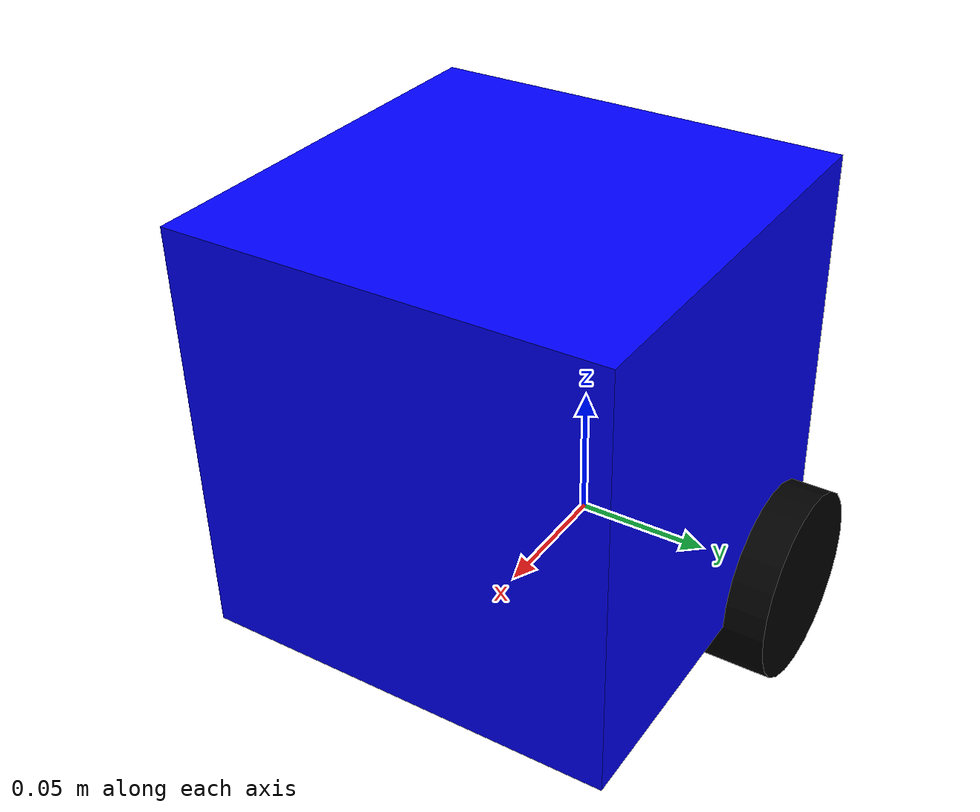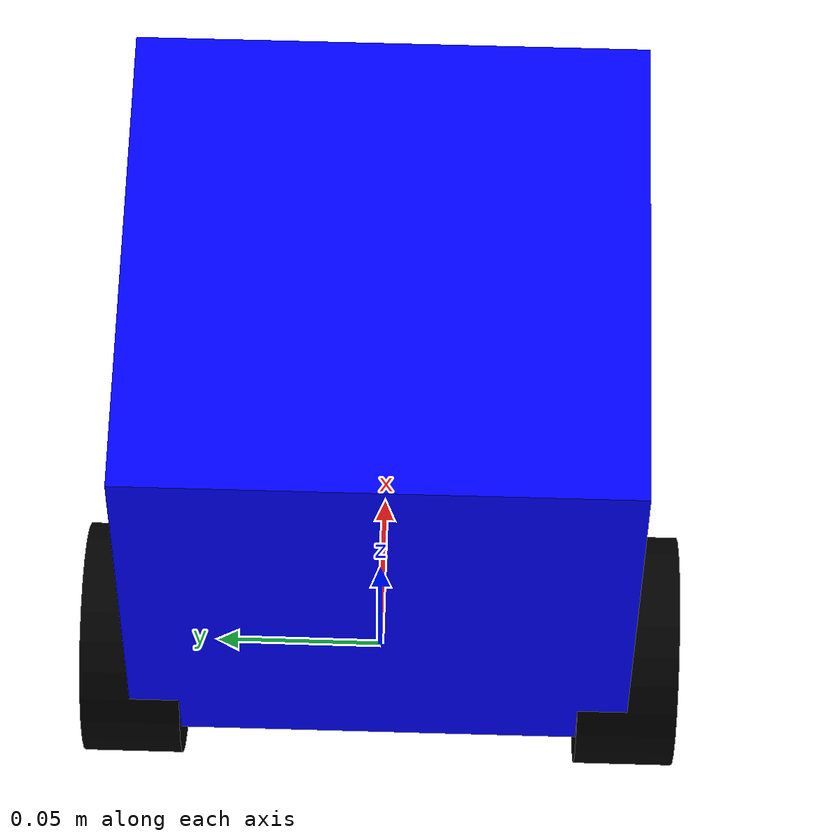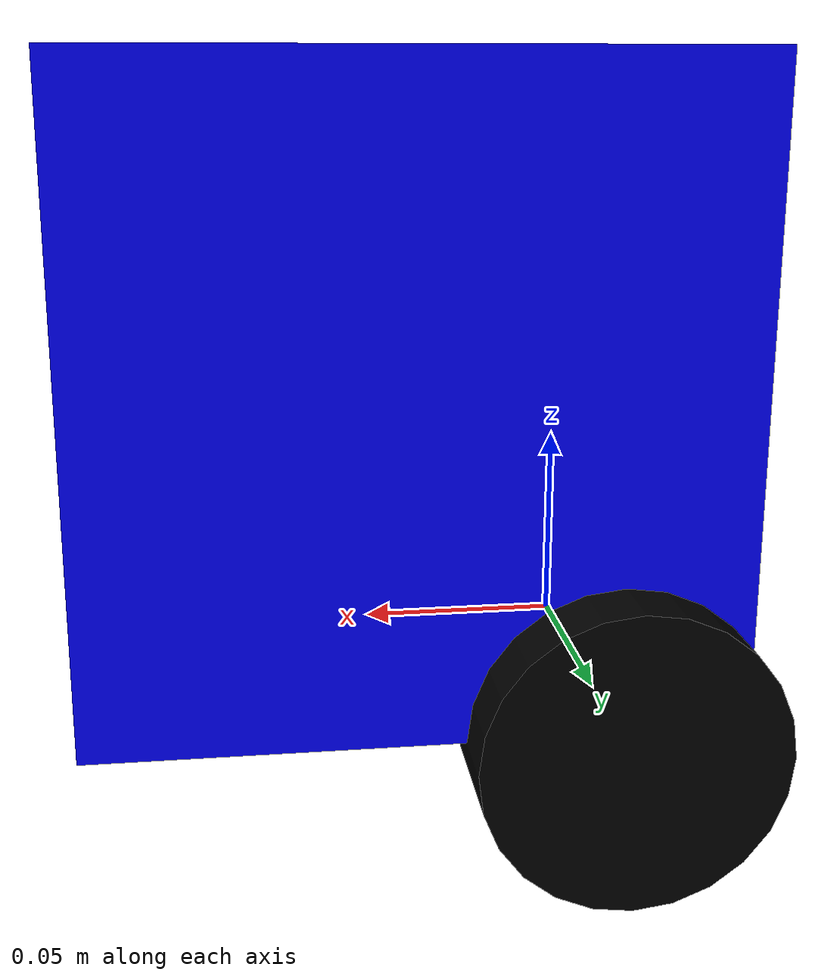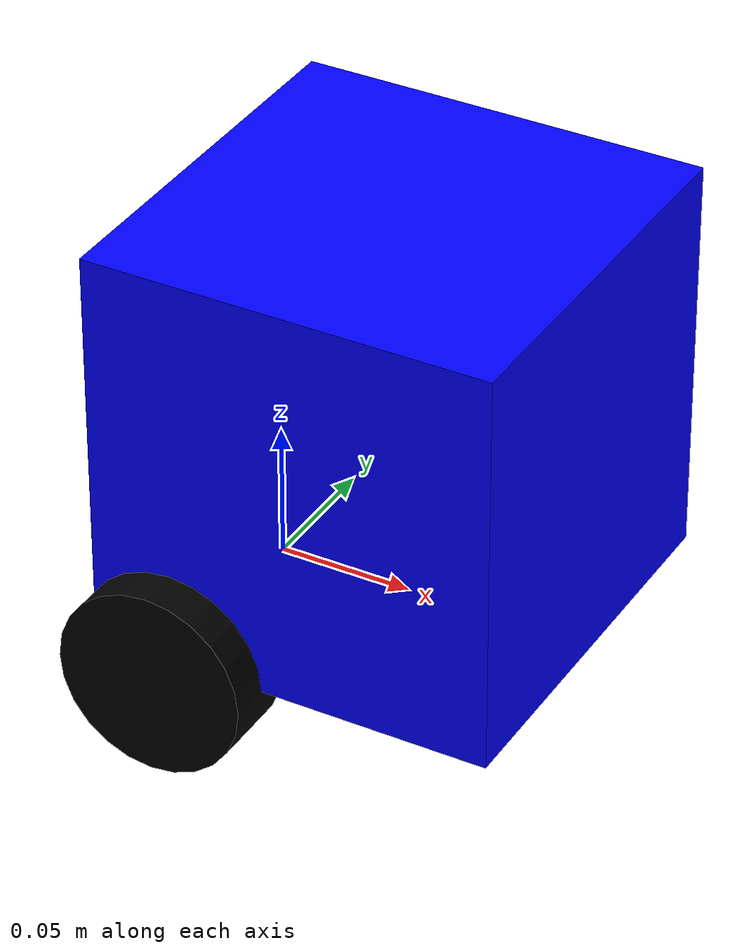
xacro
<?xml version="1.0"?>
<robot xmlns:xacro="http://www.ros.org/wiki/xacro"  >

    <xacro:include filename="inertial_macros.xacro"/>

    <material name="black">
        <color rgba="0 0 0 1"/>
    </material>
    <material name="white">
        <color rgba="1 1 1 1"/>
    </material>
    <material name="orange">
        <color rgba="1 0.5 0 1"/>
    </material>
    <material name="blue">
        <color rgba="0 0 1 1"/>
    </material>
<!-- Base Link-->
    <link name="base_link">

    </link>
<!-- Chassis-->
    <joint name="chassis_joint" type="fixed">
        <parent link="base_link"/>
        <child link="chassis"/>
        <origin xyz="-0.03 0 0" />
    </joint>

    <link name="chassis">
        <visual>
            <origin xyz="0.075 0 0.075"/>
            <geometry>
                <box size="0.15 0.15 0.15"/>
            </geometry>
            <material name="blue"/>
        </visual>
        <collision>
            <origin xyz="0.075 0 0.075"/>
            <geometry>
                <box size="0.15 0.15 0.15"/>
            </geometry>
        </collision>
        <xacro:inertial_box mass="0.5" x="0.15" y="0.15" z="0.15">
            <origin xyz="0.075 0 0.075" rpy="0 0 0"/>
        </xacro:inertial_box>
    </link>

<gazebo reference="chassis">
<material>Gazebo/Blue</material>
</gazebo>
<!-- Left Wheel Link-->
    <joint name="left_wheel_joint" type="continuous">
        <parent link="base_link"/>
        <child link="left_wheel"/>
        <origin xyz="0 0.075 0" rpy="-${pi/2} 0 0"/>
        <axis xyz="0 0 1"/>
    </joint>

    <link name="left_wheel">
        <visual>
            <geometry>
                <cylinder length="0.03 " radius="0.035"/>
            </geometry>
            <material name="black"/>
        </visual>
        <collision>
            <geometry>
                <cylinder length="0.03 " radius="0.035"/>
            </geometry>
        </collision>
        <xacro:inertial_cylinder mass="0.1" length="0.03" radius="0.035">
            <origin xyz="0 0 0" rpy="0 0 0"/>
        </xacro:inertial_cylinder>
    </link>
<gazebo reference="left_wheel">
<material>Gazebo/Black</material>
</gazebo>
<!-- Right Wheel Link-->
    <joint name="right_wheel_joint" type="continuous">
        <parent link="base_link"/>
        <child link="right_wheel"/>
        <origin xyz="0 -0.075 0" rpy="${pi/2} 0 0"/>
        <axis xyz="0 0 -1"/>
    </joint>

    <link name="right_wheel">
        <visual>
            <geometry>
                <cylinder length="0.03 " radius="0.035"/>
            </geometry>
            <material name="black"/>
        </visual>
        <collision>
            <geometry>
                <cylinder length="0.03 " radius="0.035"/>
            </geometry>
        </collision>
        <xacro:inertial_cylinder mass="0.1" length="0.03" radius="0.035">
            <origin xyz="0 0 0" rpy="0 0 0"/>
        </xacro:inertial_cylinder>
    </link>
    <gazebo reference="right_wheel">
<material>Gazebo/Black</material>
</gazebo>

<!-- Caster Wheel Link-->
    <joint name="caster_wheel_joint" type="fixed">
        <parent link="chassis"/>
        <child link="caster_wheel"/>
        <origin xyz="0.1 0 0"/>
    </joint>

    <link name="caster_wheel">
        <visual>
            <geometry>
                <sphere radius="0.035"/>
            </geometry>
            <material name="black"/>
        </visual>
        <collision>
            <geometry>
                <sphere radius="0.035"/>
            </geometry>
        </collision>
        <xacro:inertial_sphere mass="0.1" radius="0.035">
            <origin xyz="0 0 0" rpy="0 0 0"/>
        </xacro:inertial_sphere>
    </link>
        <gazebo reference="caster_wheel">
<material>Gazebo/Black</material>
<mu1 value="0.0001"/>
<mu2 value="0.0001"/>
</gazebo>

</robot>
